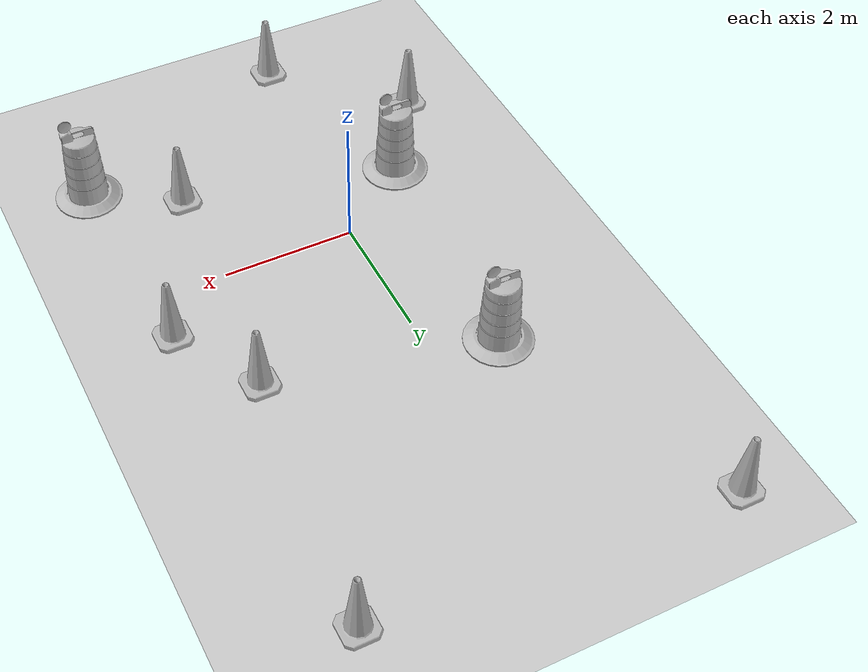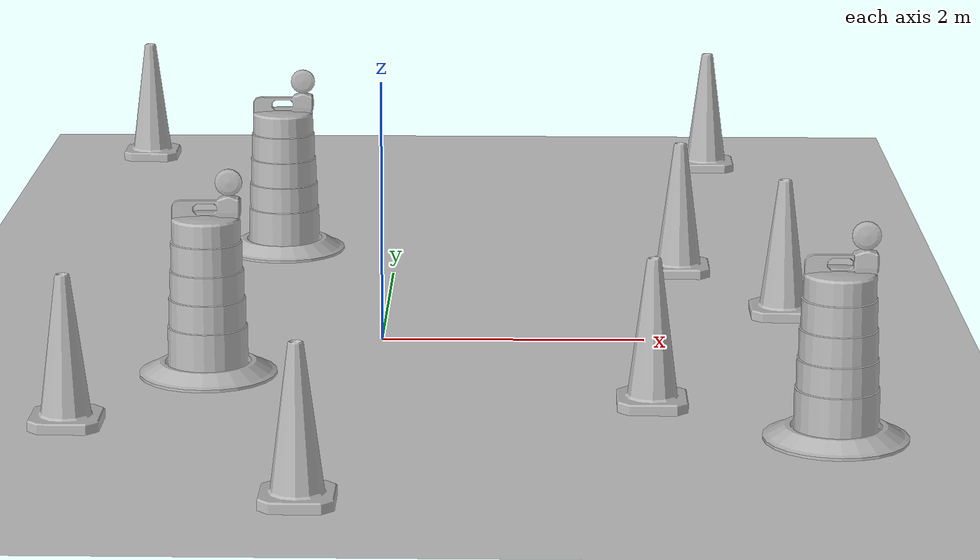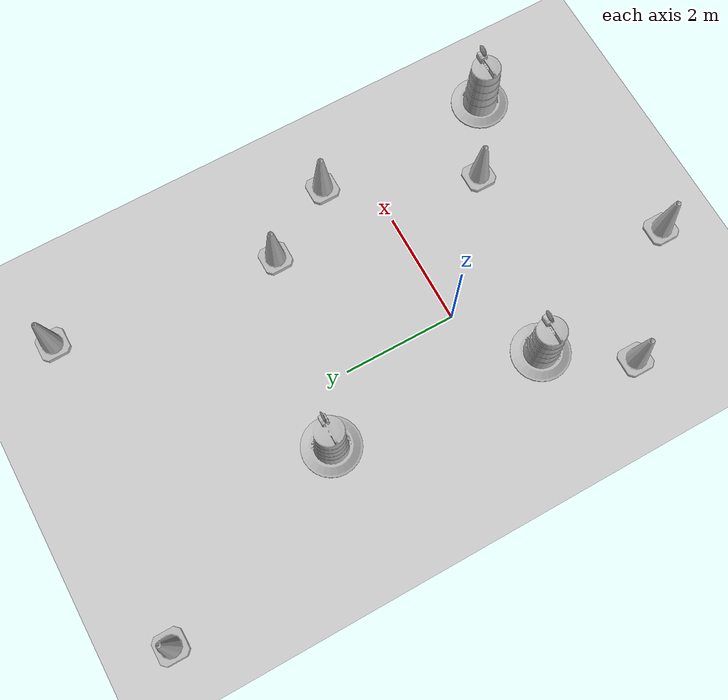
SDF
<sdf version="1.7">
 <world name="default">
  <light name="sun" type="directional">
   <pose>0 0 10 0 -0 0</pose>
   <diffuse>0.8 0.8 0.8 1</diffuse>
   <specular>0.2 0.2 0.2 1</specular>
   <attenuation>
    <range>1000</range>
    <constant>0.9</constant>
    <linear>0.01</linear>
    <quadratic>0.001</quadratic>
   </attenuation>
   <direction>-0.5 0.1 -0.9</direction>
   <spot><inner_angle>0</inner_angle><outer_angle>0</outer_angle><falloff>0</falloff></spot>
  </light>
  <model name="ground_plane">
   <static>1</static>
   <link name="link">
    <collision name="collision">
     <geometry><plane><normal>0 0 1</normal><size>100 100</size></plane></geometry>
     <surface>
      <contact><collide_bitmask>65535</collide_bitmask></contact>
      <friction><ode><mu>100</mu><mu2>50</mu2></ode></friction>
     </surface>
    </collision>
    <visual name="visual">
     <cast_shadows>0</cast_shadows>
     <geometry><plane><normal>0 0 1</normal><size>100 100</size></plane></geometry>
     <material>
      <script><uri>file://media/materials/scripts/gazebo.material</uri><name>Gazebo/Grey</name></script>
     </material>
    </visual>
   </link>
  </model>
  <gravity>0 0 -9.8</gravity>
  <magnetic_field>6e-06 2.3e-05 -4.2e-05</magnetic_field>
  <atmosphere type="adiabatic"/>
  <physics type="ode">
   <max_step_size>0.001</max_step_size>
   <real_time_factor>1</real_time_factor>
   <real_time_update_rate>1000</real_time_update_rate>
  </physics>
  <scene><ambient>0.4 0.4 0.4 1</ambient><background>0.7 0.7 0.7 1</background><shadows>1</shadows></scene>
  <audio><device>default</device></audio>
  <spherical_coordinates>
   <surface_model>EARTH_WGS84</surface_model>
   <latitude_deg>0</latitude_deg>
   <longitude_deg>0</longitude_deg>
   <elevation>0</elevation>
   <heading_deg>0</heading_deg>
  </spherical_coordinates>
  <model name="Construction Barrel">
   <link name="link">
    <inertial>
     <pose>0 0 0.4 0 -0 0</pose>
     <mass>500</mass>
     <inertia><ixx>51.2096</ixx><iyy>51.2096</iyy><izz>25</izz><ixy>0</ixy><ixz>0</ixz><iyz>0</iyz></inertia>
    </inertial>
    <collision name="collision">
     <geometry><mesh><uri>model://construction_barrel/meshes/construction_barrel.dae</uri></mesh></geometry>
    </collision>
    <visual name="visual">
     <geometry><mesh><uri>model://construction_barrel/meshes/construction_barrel.dae</uri></mesh></geometry>
    </visual>
   </link>
   <pose>-1.24829 -0.97394 -1e-06 2e-06 -1e-06 -1.8e-05</pose>
  </model>
  <model name="Construction Barrel_0">
   <link name="link">
    <inertial>
     <pose>0 0 0.4 0 -0 0</pose>
     <mass>500</mass>
     <inertia><ixx>51.2096</ixx><iyy>51.2096</iyy><izz>25</izz><ixy>0</ixy><ixz>0</ixz><iyz>0</iyz></inertia>
    </inertial>
    <collision name="collision">
     <geometry><mesh><uri>model://construction_barrel/meshes/construction_barrel.dae</uri></mesh></geometry>
    </collision>
    <visual name="visual">
     <geometry><mesh><uri>model://construction_barrel/meshes/construction_barrel.dae</uri></mesh></geometry>
    </visual>
   </link>
   <pose>-0.960758 2.81522 0 0 0 -1.3e-05</pose>
  </model>
  <model name="Construction Cone">
   <link name="link">
    <collision name="collision">
     <geometry>
      <mesh><scale>10 10 10</scale><uri>model://construction_cone/meshes/construction_cone.dae</uri></mesh>
     </geometry>
    </collision>
    <visual name="visual">
     <geometry>
      <mesh><scale>10 10 10</scale><uri>model://construction_cone/meshes/construction_cone.dae</uri></mesh>
     </geometry>
    </visual>
    <inertial>
     <inertia><ixx>1</ixx><ixy>0</ixy><ixz>0</ixz><iyy>1</iyy><iyz>0</iyz><izz>1</izz></inertia>
     <mass>1</mass>
    </inertial>
   </link>
   <pose>2.35553 2.09821 0 0 -0 0</pose>
  </model>
  <model name="Construction Cone_0">
   <link name="link">
    <collision name="collision">
     <geometry>
      <mesh><scale>10 10 10</scale><uri>model://construction_cone/meshes/construction_cone.dae</uri></mesh>
     </geometry>
    </collision>
    <visual name="visual">
     <geometry>
      <mesh><scale>10 10 10</scale><uri>model://construction_cone/meshes/construction_cone.dae</uri></mesh>
     </geometry>
    </visual>
    <inertial>
     <inertia><ixx>1</ixx><ixy>0</ixy><ixz>0</ixz><iyy>1</iyy><iyz>0</iyz><izz>1</izz></inertia>
     <mass>1</mass>
    </inertial>
   </link>
   <pose>3.11545 0.776755 1e-06 1e-06 1e-06 0</pose>
  </model>
  <model name="Construction Cone_1">
   <link name="link">
    <collision name="collision">
     <geometry>
      <mesh><scale>10 10 10</scale><uri>model://construction_cone/meshes/construction_cone.dae</uri></mesh>
     </geometry>
    </collision>
    <visual name="visual">
     <geometry>
      <mesh><scale>10 10 10</scale><uri>model://construction_cone/meshes/construction_cone.dae</uri></mesh>
     </geometry>
    </visual>
    <inertial>
     <inertia><ixx>1</ixx><ixy>0</ixy><ixz>0</ixz><iyy>1</iyy><iyz>0</iyz><izz>1</izz></inertia>
     <mass>1</mass>
    </inertial>
   </link>
   <pose>2.00119 -1.72439 -0 0 -1e-06 0</pose>
  </model>
  <model name="Construction Cone_2">
   <link name="link">
    <collision name="collision">
     <geometry>
      <mesh><scale>10 10 10</scale><uri>model://construction_cone/meshes/construction_cone.dae</uri></mesh>
     </geometry>
    </collision>
    <visual name="visual">
     <geometry>
      <mesh><scale>10 10 10</scale><uri>model://construction_cone/meshes/construction_cone.dae</uri></mesh>
     </geometry>
    </visual>
    <inertial>
     <inertia><ixx>1</ixx><ixy>0</ixy><ixz>0</ixz><iyy>1</iyy><iyz>0</iyz><izz>1</izz></inertia>
     <mass>1</mass>
    </inertial>
   </link>
   <pose>-2.1244 -2.26845 0 0 -0 0</pose>
  </model>
  <model name="Construction Cone_3">
   <link name="link">
    <collision name="collision">
     <geometry>
      <mesh><scale>10 10 10</scale><uri>model://construction_cone/meshes/construction_cone.dae</uri></mesh>
     </geometry>
    </collision>
    <visual name="visual">
     <geometry>
      <mesh><scale>10 10 10</scale><uri>model://construction_cone/meshes/construction_cone.dae</uri></mesh>
     </geometry>
    </visual>
    <inertial>
     <inertia><ixx>1</ixx><ixy>0</ixy><ixz>0</ixz><iyy>1</iyy><iyz>0</iyz><izz>1</izz></inertia>
     <mass>1</mass>
    </inertial>
   </link>
   <pose>-2.49131 6.42309 0 0 -0 0</pose>
  </model>
  <model name="Construction Cone_4">
   <link name="link">
    <collision name="collision">
     <geometry>
      <mesh><scale>10 10 10</scale><uri>model://construction_cone/meshes/construction_cone.dae</uri></mesh>
     </geometry>
    </collision>
    <visual name="visual">
     <geometry>
      <mesh><scale>10 10 10</scale><uri>model://construction_cone/meshes/construction_cone.dae</uri></mesh>
     </geometry>
    </visual>
    <inertial>
     <inertia><ixx>1</ixx><ixy>0</ixy><ixz>0</ixz><iyy>1</iyy><iyz>0</iyz><izz>1</izz></inertia>
     <mass>1</mass>
    </inertial>
   </link>
   <pose>-0.38445 -3.9443 -0 0 -0 0</pose>
  </model>
  <model name="Construction Cone_5">
   <link name="link">
    <collision name="collision">
     <geometry>
      <mesh><scale>10 10 10</scale><uri>model://construction_cone/meshes/construction_cone.dae</uri></mesh>
     </geometry>
    </collision>
    <visual name="visual">
     <geometry>
      <mesh><scale>10 10 10</scale><uri>model://construction_cone/meshes/construction_cone.dae</uri></mesh>
     </geometry>
    </visual>
    <inertial>
     <inertia><ixx>1</ixx><ixy>0</ixy><ixz>0</ixz><iyy>1</iyy><iyz>0</iyz><izz>1</izz></inertia>
     <mass>1</mass>
    </inertial>
   </link>
   <pose>2.78274 6.03932 0 0 -0 0</pose>
  </model>
  <model name="Construction Barrel_1">
   <link name="link">
    <inertial>
     <pose>0 0 0.4 0 -0 0</pose>
     <mass>500</mass>
     <inertia><ixx>51.2096</ixx><iyy>51.2096</iyy><izz>25</izz><ixy>0</ixy><ixz>0</ixz><iyz>0</iyz></inertia>
    </inertial>
    <collision name="collision">
     <geometry><mesh><uri>model://construction_barrel/meshes/construction_barrel.dae</uri></mesh></geometry>
    </collision>
    <visual name="visual">
     <geometry><mesh><uri>model://construction_barrel/meshes/construction_barrel.dae</uri></mesh></geometry>
    </visual>
   </link>
   <pose>3.24319 -2.48751 -1e-06 -3e-06 -1e-06 -3e-06</pose>
  </model>
 </world>
</sdf>
